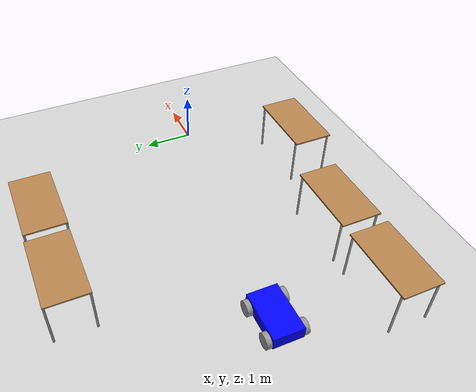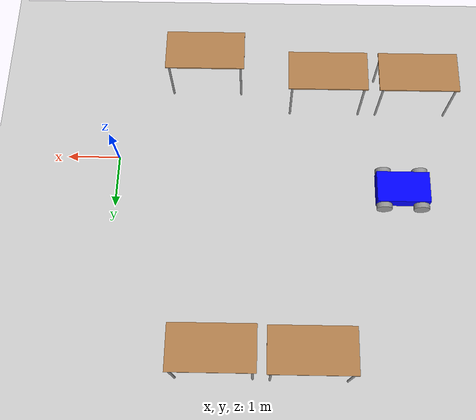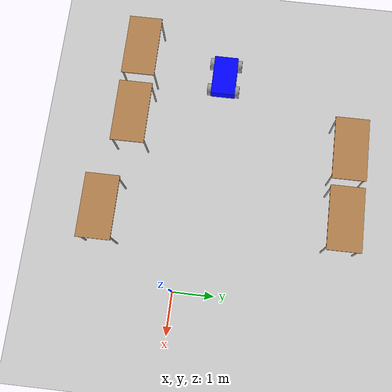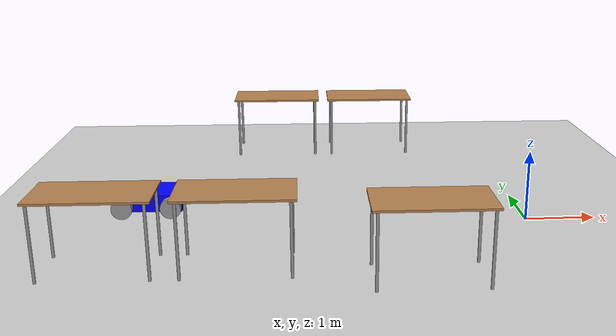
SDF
<sdf version="1.6">
 <world name="default">
  <model name="ground_plane">
   <static>1</static>
   <link name="link">
    <collision name="collision">
     <geometry><plane><normal>0 0 1</normal><size>100 100</size></plane></geometry>
     <surface>
      <contact><collide_bitmask>65535</collide_bitmask></contact>
      <friction><ode><mu>100</mu><mu2>50</mu2></ode></friction>
     </surface>
    </collision>
    <visual name="visual">
     <cast_shadows>0</cast_shadows>
     <geometry><plane><normal>0 0 1</normal><size>100 100</size></plane></geometry>
     <material>
      <script><uri>file://media/materials/scripts/gazebo.material</uri><name>Gazebo/Grey</name></script>
     </material>
    </visual>
   </link>
  </model>
  <model name="table">
   <static>1</static>
   <link name="link">
    <collision name="surface">
     <pose>0 0 1 0 -0 0</pose>
     <geometry><box><size>1.5 0.8 0.03</size></box></geometry>
     <surface><friction><ode><mu>0.6</mu><mu2>0.6</mu2></ode></friction></surface>
    </collision>
    <visual name="visual1">
     <pose>0 0 1 0 -0 0</pose>
     <geometry><box><size>1.5 0.8 0.03</size></box></geometry>
     <material>
      <script><uri>file://media/materials/scripts/gazebo.material</uri><name>Gazebo/Wood</name></script>
     </material>
    </visual>
    <collision name="front_left_leg">
     <pose>0.68 0.38 0.5 0 -0 0</pose>
     <geometry><cylinder><radius>0.02</radius><length>1</length></cylinder></geometry>
    </collision>
    <visual name="front_left_leg">
     <pose>0.68 0.38 0.5 0 -0 0</pose>
     <geometry><cylinder><radius>0.02</radius><length>1</length></cylinder></geometry>
     <material>
      <script><uri>file://media/materials/scripts/gazebo.material</uri><name>Gazebo/Grey</name></script>
     </material>
    </visual>
    <collision name="front_right_leg">
     <pose>0.68 -0.38 0.5 0 -0 0</pose>
     <geometry><cylinder><radius>0.02</radius><length>1</length></cylinder></geometry>
    </collision>
    <visual name="front_right_leg">
     <pose>0.68 -0.38 0.5 0 -0 0</pose>
     <geometry><cylinder><radius>0.02</radius><length>1</length></cylinder></geometry>
     <material>
      <script><uri>file://media/materials/scripts/gazebo.material</uri><name>Gazebo/Grey</name></script>
     </material>
    </visual>
    <collision name="back_right_leg">
     <pose>-0.68 -0.38 0.5 0 -0 0</pose>
     <geometry><cylinder><radius>0.02</radius><length>1</length></cylinder></geometry>
    </collision>
    <visual name="back_right_leg">
     <pose>-0.68 -0.38 0.5 0 -0 0</pose>
     <geometry><cylinder><radius>0.02</radius><length>1</length></cylinder></geometry>
     <material>
      <script><uri>file://media/materials/scripts/gazebo.material</uri><name>Gazebo/Grey</name></script>
     </material>
    </visual>
    <collision name="back_left_leg">
     <pose>-0.68 0.38 0.5 0 -0 0</pose>
     <geometry><cylinder><radius>0.02</radius><length>1</length></cylinder></geometry>
    </collision>
    <visual name="back_left_leg">
     <pose>-0.68 0.38 0.5 0 -0 0</pose>
     <geometry><cylinder><radius>0.02</radius><length>1</length></cylinder></geometry>
     <material>
      <script><uri>file://media/materials/scripts/gazebo.material</uri><name>Gazebo/Grey</name></script>
     </material>
    </visual>
   </link>
   <pose>-1.99795 3.78498 0 0 -0 0</pose>
  </model>
  <model name="table_0">
   <static>1</static>
   <link name="link">
    <collision name="surface">
     <pose>0 0 1 0 -0 0</pose>
     <geometry><box><size>1.5 0.8 0.03</size></box></geometry>
     <surface><friction><ode><mu>0.6</mu><mu2>0.6</mu2></ode></friction></surface>
    </collision>
    <visual name="visual1">
     <pose>0 0 1 0 -0 0</pose>
     <geometry><box><size>1.5 0.8 0.03</size></box></geometry>
     <material>
      <script><uri>file://media/materials/scripts/gazebo.material</uri><name>Gazebo/Wood</name></script>
     </material>
    </visual>
    <collision name="front_left_leg">
     <pose>0.68 0.38 0.5 0 -0 0</pose>
     <geometry><cylinder><radius>0.02</radius><length>1</length></cylinder></geometry>
    </collision>
    <visual name="front_left_leg">
     <pose>0.68 0.38 0.5 0 -0 0</pose>
     <geometry><cylinder><radius>0.02</radius><length>1</length></cylinder></geometry>
     <material>
      <script><uri>file://media/materials/scripts/gazebo.material</uri><name>Gazebo/Grey</name></script>
     </material>
    </visual>
    <collision name="front_right_leg">
     <pose>0.68 -0.38 0.5 0 -0 0</pose>
     <geometry><cylinder><radius>0.02</radius><length>1</length></cylinder></geometry>
    </collision>
    <visual name="front_right_leg">
     <pose>0.68 -0.38 0.5 0 -0 0</pose>
     <geometry><cylinder><radius>0.02</radius><length>1</length></cylinder></geometry>
     <material>
      <script><uri>file://media/materials/scripts/gazebo.material</uri><name>Gazebo/Grey</name></script>
     </material>
    </visual>
    <collision name="back_right_leg">
     <pose>-0.68 -0.38 0.5 0 -0 0</pose>
     <geometry><cylinder><radius>0.02</radius><length>1</length></cylinder></geometry>
    </collision>
    <visual name="back_right_leg">
     <pose>-0.68 -0.38 0.5 0 -0 0</pose>
     <geometry><cylinder><radius>0.02</radius><length>1</length></cylinder></geometry>
     <material>
      <script><uri>file://media/materials/scripts/gazebo.material</uri><name>Gazebo/Grey</name></script>
     </material>
    </visual>
    <collision name="back_left_leg">
     <pose>-0.68 0.38 0.5 0 -0 0</pose>
     <geometry><cylinder><radius>0.02</radius><length>1</length></cylinder></geometry>
    </collision>
    <visual name="back_left_leg">
     <pose>-0.68 0.38 0.5 0 -0 0</pose>
     <geometry><cylinder><radius>0.02</radius><length>1</length></cylinder></geometry>
     <material>
      <script><uri>file://media/materials/scripts/gazebo.material</uri><name>Gazebo/Grey</name></script>
     </material>
    </visual>
   </link>
   <pose>-3.6562 3.79992 0 0 -0 0</pose>
  </model>
  <model name="table_1">
   <static>1</static>
   <link name="link">
    <collision name="surface">
     <pose>0 0 1 0 -0 0</pose>
     <geometry><box><size>1.5 0.8 0.03</size></box></geometry>
     <surface><friction><ode><mu>0.6</mu><mu2>0.6</mu2></ode></friction></surface>
    </collision>
    <visual name="visual1">
     <pose>0 0 1 0 -0 0</pose>
     <geometry><box><size>1.5 0.8 0.03</size></box></geometry>
     <material>
      <script><uri>file://media/materials/scripts/gazebo.material</uri><name>Gazebo/Wood</name></script>
     </material>
    </visual>
    <collision name="front_left_leg">
     <pose>0.68 0.38 0.5 0 -0 0</pose>
     <geometry><cylinder><radius>0.02</radius><length>1</length></cylinder></geometry>
    </collision>
    <visual name="front_left_leg">
     <pose>0.68 0.38 0.5 0 -0 0</pose>
     <geometry><cylinder><radius>0.02</radius><length>1</length></cylinder></geometry>
     <material>
      <script><uri>file://media/materials/scripts/gazebo.material</uri><name>Gazebo/Grey</name></script>
     </material>
    </visual>
    <collision name="front_right_leg">
     <pose>0.68 -0.38 0.5 0 -0 0</pose>
     <geometry><cylinder><radius>0.02</radius><length>1</length></cylinder></geometry>
    </collision>
    <visual name="front_right_leg">
     <pose>0.68 -0.38 0.5 0 -0 0</pose>
     <geometry><cylinder><radius>0.02</radius><length>1</length></cylinder></geometry>
     <material>
      <script><uri>file://media/materials/scripts/gazebo.material</uri><name>Gazebo/Grey</name></script>
     </material>
    </visual>
    <collision name="back_right_leg">
     <pose>-0.68 -0.38 0.5 0 -0 0</pose>
     <geometry><cylinder><radius>0.02</radius><length>1</length></cylinder></geometry>
    </collision>
    <visual name="back_right_leg">
     <pose>-0.68 -0.38 0.5 0 -0 0</pose>
     <geometry><cylinder><radius>0.02</radius><length>1</length></cylinder></geometry>
     <material>
      <script><uri>file://media/materials/scripts/gazebo.material</uri><name>Gazebo/Grey</name></script>
     </material>
    </visual>
    <collision name="back_left_leg">
     <pose>-0.68 0.38 0.5 0 -0 0</pose>
     <geometry><cylinder><radius>0.02</radius><length>1</length></cylinder></geometry>
    </collision>
    <visual name="back_left_leg">
     <pose>-0.68 0.38 0.5 0 -0 0</pose>
     <geometry><cylinder><radius>0.02</radius><length>1</length></cylinder></geometry>
     <material>
      <script><uri>file://media/materials/scripts/gazebo.material</uri><name>Gazebo/Grey</name></script>
     </material>
    </visual>
   </link>
   <pose>-4.01484 -1.41358 0 0 -0 0</pose>
  </model>
  <model name="table_2">
   <static>1</static>
   <link name="link">
    <collision name="surface">
     <pose>0 0 1 0 -0 0</pose>
     <geometry><box><size>1.5 0.8 0.03</size></box></geometry>
     <surface><friction><ode><mu>0.6</mu><mu2>0.6</mu2></ode></friction></surface>
    </collision>
    <visual name="visual1">
     <pose>0 0 1 0 -0 0</pose>
     <geometry><box><size>1.5 0.8 0.03</size></box></geometry>
     <material>
      <script><uri>file://media/materials/scripts/gazebo.material</uri><name>Gazebo/Wood</name></script>
     </material>
    </visual>
    <collision name="front_left_leg">
     <pose>0.68 0.38 0.5 0 -0 0</pose>
     <geometry><cylinder><radius>0.02</radius><length>1</length></cylinder></geometry>
    </collision>
    <visual name="front_left_leg">
     <pose>0.68 0.38 0.5 0 -0 0</pose>
     <geometry><cylinder><radius>0.02</radius><length>1</length></cylinder></geometry>
     <material>
      <script><uri>file://media/materials/scripts/gazebo.material</uri><name>Gazebo/Grey</name></script>
     </material>
    </visual>
    <collision name="front_right_leg">
     <pose>0.68 -0.38 0.5 0 -0 0</pose>
     <geometry><cylinder><radius>0.02</radius><length>1</length></cylinder></geometry>
    </collision>
    <visual name="front_right_leg">
     <pose>0.68 -0.38 0.5 0 -0 0</pose>
     <geometry><cylinder><radius>0.02</radius><length>1</length></cylinder></geometry>
     <material>
      <script><uri>file://media/materials/scripts/gazebo.material</uri><name>Gazebo/Grey</name></script>
     </material>
    </visual>
    <collision name="back_right_leg">
     <pose>-0.68 -0.38 0.5 0 -0 0</pose>
     <geometry><cylinder><radius>0.02</radius><length>1</length></cylinder></geometry>
    </collision>
    <visual name="back_right_leg">
     <pose>-0.68 -0.38 0.5 0 -0 0</pose>
     <geometry><cylinder><radius>0.02</radius><length>1</length></cylinder></geometry>
     <material>
      <script><uri>file://media/materials/scripts/gazebo.material</uri><name>Gazebo/Grey</name></script>
     </material>
    </visual>
    <collision name="back_left_leg">
     <pose>-0.68 0.38 0.5 0 -0 0</pose>
     <geometry><cylinder><radius>0.02</radius><length>1</length></cylinder></geometry>
    </collision>
    <visual name="back_left_leg">
     <pose>-0.68 0.38 0.5 0 -0 0</pose>
     <geometry><cylinder><radius>0.02</radius><length>1</length></cylinder></geometry>
     <material>
      <script><uri>file://media/materials/scripts/gazebo.material</uri><name>Gazebo/Grey</name></script>
     </material>
    </visual>
   </link>
   <pose>-5.72274 -1.40978 0 0 -0 0</pose>
  </model>
  <model name="table_3">
   <static>1</static>
   <link name="link">
    <collision name="surface">
     <pose>0 0 1 0 -0 0</pose>
     <geometry><box><size>1.5 0.8 0.03</size></box></geometry>
     <surface><friction><ode><mu>0.6</mu><mu2>0.6</mu2></ode></friction></surface>
    </collision>
    <visual name="visual1">
     <pose>0 0 1 0 -0 0</pose>
     <geometry><box><size>1.5 0.8 0.03</size></box></geometry>
     <material>
      <script><uri>file://media/materials/scripts/gazebo.material</uri><name>Gazebo/Wood</name></script>
     </material>
    </visual>
    <collision name="front_left_leg">
     <pose>0.68 0.38 0.5 0 -0 0</pose>
     <geometry><cylinder><radius>0.02</radius><length>1</length></cylinder></geometry>
    </collision>
    <visual name="front_left_leg">
     <pose>0.68 0.38 0.5 0 -0 0</pose>
     <geometry><cylinder><radius>0.02</radius><length>1</length></cylinder></geometry>
     <material>
      <script><uri>file://media/materials/scripts/gazebo.material</uri><name>Gazebo/Grey</name></script>
     </material>
    </visual>
    <collision name="front_right_leg">
     <pose>0.68 -0.38 0.5 0 -0 0</pose>
     <geometry><cylinder><radius>0.02</radius><length>1</length></cylinder></geometry>
    </collision>
    <visual name="front_right_leg">
     <pose>0.68 -0.38 0.5 0 -0 0</pose>
     <geometry><cylinder><radius>0.02</radius><length>1</length></cylinder></geometry>
     <material>
      <script><uri>file://media/materials/scripts/gazebo.material</uri><name>Gazebo/Grey</name></script>
     </material>
    </visual>
    <collision name="back_right_leg">
     <pose>-0.68 -0.38 0.5 0 -0 0</pose>
     <geometry><cylinder><radius>0.02</radius><length>1</length></cylinder></geometry>
    </collision>
    <visual name="back_right_leg">
     <pose>-0.68 -0.38 0.5 0 -0 0</pose>
     <geometry><cylinder><radius>0.02</radius><length>1</length></cylinder></geometry>
     <material>
      <script><uri>file://media/materials/scripts/gazebo.material</uri><name>Gazebo/Grey</name></script>
     </material>
    </visual>
    <collision name="back_left_leg">
     <pose>-0.68 0.38 0.5 0 -0 0</pose>
     <geometry><cylinder><radius>0.02</radius><length>1</length></cylinder></geometry>
    </collision>
    <visual name="back_left_leg">
     <pose>-0.68 0.38 0.5 0 -0 0</pose>
     <geometry><cylinder><radius>0.02</radius><length>1</length></cylinder></geometry>
     <material>
      <script><uri>file://media/materials/scripts/gazebo.material</uri><name>Gazebo/Grey</name></script>
     </material>
    </visual>
   </link>
   <pose>-1.67125 -1.83137 0 0 -0 0</pose>
  </model>
  <model name="MyRobot">
   <link name="link_0">
    <pose>0 0 0.040497 0 -0 0</pose>
    <inertial>
     <mass>1</mass>
     <inertia>
      <ixx>0.166667</ixx>
      <ixy>0</ixy>
      <ixz>0</ixz>
      <iyy>0.166667</iyy>
      <iyz>0</iyz>
      <izz>0.166667</izz>
     </inertia>
    </inertial>
    <visual name="visual">
     <geometry><box><size>1 0.6 0.25</size></box></geometry>
     <material>
      <lighting>1</lighting>
      <script><uri>file://media/materials/scripts/gazebo.material</uri><name>Gazebo/Grey</name></script>
      <shader type="pixel"><normal_map>__default__</normal_map></shader>
      <ambient>0 0 1 1</ambient>
      <diffuse>0 0 1 1</diffuse>
      <specular>0 0 1 1</specular>
      <emissive>0 0 0 1</emissive>
     </material>
    </visual>
    <collision name="collision">
     <geometry><box><size>1 0.6 0.25</size></box></geometry>
     <surface>
      <friction>
       <ode><mu>1</mu><mu2>1</mu2><fdir1>0 0 0</fdir1><slip1>0</slip1><slip2>0</slip2></ode>
       <torsional>
        <coefficient>1</coefficient>
        <patch_radius>0</patch_radius>
        <surface_radius>0</surface_radius>
        <use_patch_radius>1</use_patch_radius>
        <ode><slip>0</slip></ode>
       </torsional>
      </friction>
      <bounce><restitution_coefficient>0</restitution_coefficient><threshold>1e+06</threshold></bounce>
      <contact>
       <collide_without_contact>0</collide_without_contact>
       <collide_without_contact_bitmask>1</collide_without_contact_bitmask>
       <collide_bitmask>1</collide_bitmask>
       <ode>
        <soft_cfm>0</soft_cfm>
        <soft_erp>0.2</soft_erp>
        <kp>1e+13</kp>
        <kd>1</kd>
        <max_vel>0.01</max_vel>
        <min_depth>0</min_depth>
       </ode>
       <bullet>
        <split_impulse>1</split_impulse>
        <split_impulse_penetration_threshold>-0.01</split_impulse_penetration_threshold>
        <soft_cfm>0</soft_cfm>
        <soft_erp>0.2</soft_erp>
        <kp>1e+13</kp>
        <kd>1</kd>
       </bullet>
      </contact>
     </surface>
    </collision>
   </link>
   <link name="link_1">
    <pose>-0.35 -0.350119 -0.009503 1.57 -0 0</pose>
    <inertial>
     <mass>1</mass>
     <inertia><ixx>0.145833</ixx><ixy>0</ixy><ixz>0</ixz><iyy>0.145833</iyy><iyz>0</iyz><izz>0.125</izz></inertia>
    </inertial>
    <visual name="visual">
     <geometry><cylinder><radius>0.15</radius><length>0.1</length></cylinder></geometry>
     <material>
      <lighting>1</lighting>
      <script><uri>file://media/materials/scripts/gazebo.material</uri><name>Gazebo/Grey</name></script>
      <shader type="pixel"><normal_map>__default__</normal_map></shader>
      <ambient>0 0 0 1</ambient>
      <diffuse>0 0 0 1</diffuse>
      <specular>0.01 0.01 0.01 1</specular>
      <emissive>0 0 0 1</emissive>
     </material>
    </visual>
    <collision name="collision">
     <geometry><cylinder><radius>0.15</radius><length>0.1</length></cylinder></geometry>
     <surface>
      <friction>
       <ode><mu>1</mu><mu2>1</mu2><fdir1>0 0 0</fdir1><slip1>0</slip1><slip2>0</slip2></ode>
       <torsional>
        <coefficient>1</coefficient>
        <patch_radius>0</patch_radius>
        <surface_radius>0</surface_radius>
        <use_patch_radius>1</use_patch_radius>
        <ode><slip>0</slip></ode>
       </torsional>
      </friction>
      <bounce><restitution_coefficient>0</restitution_coefficient><threshold>1e+06</threshold></bounce>
      <contact>
       <collide_without_contact>0</collide_without_contact>
       <collide_without_contact_bitmask>1</collide_without_contact_bitmask>
       <collide_bitmask>1</collide_bitmask>
       <ode>
        <soft_cfm>0</soft_cfm>
        <soft_erp>0.2</soft_erp>
        <kp>1e+13</kp>
        <kd>1</kd>
        <max_vel>0.01</max_vel>
        <min_depth>0</min_depth>
       </ode>
       <bullet>
        <split_impulse>1</split_impulse>
        <split_impulse_penetration_threshold>-0.01</split_impulse_penetration_threshold>
        <soft_cfm>0</soft_cfm>
        <soft_erp>0.2</soft_erp>
        <kp>1e+13</kp>
        <kd>1</kd>
       </bullet>
      </contact>
     </surface>
    </collision>
   </link>
   <link name="link_1_clone">
    <pose>0.35 -0.350119 -0.009503 1.57 -0 0</pose>
    <inertial>
     <mass>1</mass>
     <inertia><ixx>0.145833</ixx><ixy>0</ixy><ixz>0</ixz><iyy>0.145833</iyy><iyz>0</iyz><izz>0.125</izz></inertia>
    </inertial>
    <visual name="visual">
     <geometry><cylinder><radius>0.15</radius><length>0.1</length></cylinder></geometry>
     <material>
      <lighting>1</lighting>
      <script><uri>file://media/materials/scripts/gazebo.material</uri><name>Gazebo/Grey</name></script>
      <shader type="pixel"><normal_map>__default__</normal_map></shader>
      <ambient>0 0 0 1</ambient>
      <diffuse>0 0 0 1</diffuse>
      <specular>0.01 0.01 0.01 1</specular>
      <emissive>0 0 0 1</emissive>
     </material>
    </visual>
    <collision name="collision">
     <geometry><cylinder><radius>0.15</radius><length>0.1</length></cylinder></geometry>
     <surface>
      <friction>
       <ode><mu>1</mu><mu2>1</mu2><fdir1>0 0 0</fdir1><slip1>0</slip1><slip2>0</slip2></ode>
       <torsional>
        <coefficient>1</coefficient>
        <patch_radius>0</patch_radius>
        <surface_radius>0</surface_radius>
        <use_patch_radius>1</use_patch_radius>
        <ode><slip>0</slip></ode>
       </torsional>
      </friction>
      <bounce><restitution_coefficient>0</restitution_coefficient><threshold>1e+06</threshold></bounce>
      <contact>
       <collide_without_contact>0</collide_without_contact>
       <collide_without_contact_bitmask>1</collide_without_contact_bitmask>
       <collide_bitmask>1</collide_bitmask>
       <ode>
        <soft_cfm>0</soft_cfm>
        <soft_erp>0.2</soft_erp>
        <kp>1e+13</kp>
        <kd>1</kd>
        <max_vel>0.01</max_vel>
        <min_depth>0</min_depth>
       </ode>
       <bullet>
        <split_impulse>1</split_impulse>
        <split_impulse_penetration_threshold>-0.01</split_impulse_penetration_threshold>
        <soft_cfm>0</soft_cfm>
        <soft_erp>0.2</soft_erp>
        <kp>1e+13</kp>
        <kd>1</kd>
       </bullet>
      </contact>
     </surface>
    </collision>
   </link>
   <link name="link_1_clone_0">
    <pose>0.35 0.350119 -0.011986 1.57 -0 0</pose>
    <inertial>
     <mass>1</mass>
     <inertia><ixx>0.145833</ixx><ixy>0</ixy><ixz>0</ixz><iyy>0.145833</iyy><iyz>0</iyz><izz>0.125</izz></inertia>
    </inertial>
    <visual name="visual">
     <geometry><cylinder><radius>0.15</radius><length>0.1</length></cylinder></geometry>
     <material>
      <lighting>1</lighting>
      <script><uri>file://media/materials/scripts/gazebo.material</uri><name>Gazebo/Grey</name></script>
      <shader type="pixel"><normal_map>__default__</normal_map></shader>
      <ambient>0 0 0 1</ambient>
      <diffuse>0 0 0 1</diffuse>
      <specular>0.01 0.01 0.01 1</specular>
      <emissive>0 0 0 1</emissive>
     </material>
    </visual>
    <collision name="collision">
     <geometry><cylinder><radius>0.15</radius><length>0.1</length></cylinder></geometry>
     <surface>
      <friction>
       <ode><mu>1</mu><mu2>1</mu2><fdir1>0 0 0</fdir1><slip1>0</slip1><slip2>0</slip2></ode>
       <torsional>
        <coefficient>1</coefficient>
        <patch_radius>0</patch_radius>
        <surface_radius>0</surface_radius>
        <use_patch_radius>1</use_patch_radius>
        <ode><slip>0</slip></ode>
       </torsional>
      </friction>
      <bounce><restitution_coefficient>0</restitution_coefficient><threshold>1e+06</threshold></bounce>
      <contact>
       <collide_without_contact>0</collide_without_contact>
       <collide_without_contact_bitmask>1</collide_without_contact_bitmask>
       <collide_bitmask>1</collide_bitmask>
       <ode>
        <soft_cfm>0</soft_cfm>
        <soft_erp>0.2</soft_erp>
        <kp>1e+13</kp>
        <kd>1</kd>
        <max_vel>0.01</max_vel>
        <min_depth>0</min_depth>
       </ode>
       <bullet>
        <split_impulse>1</split_impulse>
        <split_impulse_penetration_threshold>-0.01</split_impulse_penetration_threshold>
        <soft_cfm>0</soft_cfm>
        <soft_erp>0.2</soft_erp>
        <kp>1e+13</kp>
        <kd>1</kd>
       </bullet>
      </contact>
     </surface>
    </collision>
   </link>
   <link name="link_1_clone_1">
    <pose>-0.35 0.350119 -0.009503 1.57 -0 0</pose>
    <inertial>
     <mass>1</mass>
     <inertia><ixx>0.145833</ixx><ixy>0</ixy><ixz>0</ixz><iyy>0.145833</iyy><iyz>0</iyz><izz>0.125</izz></inertia>
    </inertial>
    <visual name="visual">
     <geometry><cylinder><radius>0.15</radius><length>0.1</length></cylinder></geometry>
     <material>
      <lighting>1</lighting>
      <script><uri>file://media/materials/scripts/gazebo.material</uri><name>Gazebo/Grey</name></script>
      <shader type="pixel"><normal_map>__default__</normal_map></shader>
      <ambient>0 0 0 1</ambient>
      <diffuse>0 0 0 1</diffuse>
      <specular>0.01 0.01 0.01 1</specular>
      <emissive>0 0 0 1</emissive>
     </material>
    </visual>
    <collision name="collision">
     <geometry><cylinder><radius>0.15</radius><length>0.1</length></cylinder></geometry>
     <surface>
      <friction>
       <ode><mu>1</mu><mu2>1</mu2><fdir1>0 0 0</fdir1><slip1>0</slip1><slip2>0</slip2></ode>
       <torsional>
        <coefficient>1</coefficient>
        <patch_radius>0</patch_radius>
        <surface_radius>0</surface_radius>
        <use_patch_radius>1</use_patch_radius>
        <ode><slip>0</slip></ode>
       </torsional>
      </friction>
      <bounce><restitution_coefficient>0</restitution_coefficient><threshold>1e+06</threshold></bounce>
      <contact>
       <collide_without_contact>0</collide_without_contact>
       <collide_without_contact_bitmask>1</collide_without_contact_bitmask>
       <collide_bitmask>1</collide_bitmask>
       <ode>
        <soft_cfm>0</soft_cfm>
        <soft_erp>0.2</soft_erp>
        <kp>1e+13</kp>
        <kd>1</kd>
        <max_vel>0.01</max_vel>
        <min_depth>0</min_depth>
       </ode>
       <bullet>
        <split_impulse>1</split_impulse>
        <split_impulse_penetration_threshold>-0.01</split_impulse_penetration_threshold>
        <soft_cfm>0</soft_cfm>
        <soft_erp>0.2</soft_erp>
        <kp>1e+13</kp>
        <kd>1</kd>
       </bullet>
      </contact>
     </surface>
    </collision>
   </link>
   <joint name="link_0_JOINT_0" type="revolute">
    <parent>link_0</parent>
    <child>link_1_clone</child>
    <axis>
     <xyz>0 0 1</xyz>
     <use_parent_model_frame>0</use_parent_model_frame>
     <limit>
      <lower>-1.79769e+308</lower>
      <upper>1.79769e+308</upper>
      <effort>-1</effort>
      <velocity>-1</velocity>
     </limit>
     <dynamics>
      <spring_reference>0</spring_reference>
      <spring_stiffness>0</spring_stiffness>
      <damping>0</damping>
     </dynamics>
    </axis>
    <physics>
     <ode><limit><cfm>0</cfm><erp>0.2</erp></limit><suspension><cfm>0</cfm><erp>0.2</erp></suspension></ode>
    </physics>
   </joint>
   <joint name="link_0_JOINT_1" type="revolute">
    <parent>link_0</parent>
    <child>link_1_clone_0</child>
    <axis>
     <xyz>0 0 1</xyz>
     <use_parent_model_frame>0</use_parent_model_frame>
     <limit>
      <lower>-1.79769e+308</lower>
      <upper>1.79769e+308</upper>
      <effort>-1</effort>
      <velocity>-1</velocity>
     </limit>
     <dynamics>
      <spring_reference>0</spring_reference>
      <spring_stiffness>0</spring_stiffness>
      <damping>0</damping>
     </dynamics>
    </axis>
    <physics>
     <ode><limit><cfm>0</cfm><erp>0.2</erp></limit><suspension><cfm>0</cfm><erp>0.2</erp></suspension></ode>
    </physics>
   </joint>
   <joint name="link_0_JOINT_2" type="revolute">
    <parent>link_0</parent>
    <child>link_1_clone_1</child>
    <axis>
     <xyz>0 0 1</xyz>
     <use_parent_model_frame>0</use_parent_model_frame>
     <limit>
      <lower>-1.79769e+308</lower>
      <upper>1.79769e+308</upper>
      <effort>-1</effort>
      <velocity>-1</velocity>
     </limit>
     <dynamics>
      <spring_reference>0</spring_reference>
      <spring_stiffness>0</spring_stiffness>
      <damping>0</damping>
     </dynamics>
    </axis>
    <physics>
     <ode><limit><cfm>0</cfm><erp>0.2</erp></limit><suspension><cfm>0</cfm><erp>0.2</erp></suspension></ode>
    </physics>
   </joint>
   <joint name="link_0_JOINT_3" type="revolute">
    <parent>link_0</parent>
    <child>link_1</child>
    <axis>
     <xyz>0 0 1</xyz>
     <use_parent_model_frame>0</use_parent_model_frame>
     <limit>
      <lower>-1.79769e+308</lower>
      <upper>1.79769e+308</upper>
      <effort>-1</effort>
      <velocity>-1</velocity>
     </limit>
     <dynamics>
      <spring_reference>0</spring_reference>
      <spring_stiffness>0</spring_stiffness>
      <damping>0</damping>
     </dynamics>
    </axis>
    <physics>
     <ode><limit><cfm>0</cfm><erp>0.2</erp></limit><suspension><cfm>0</cfm><erp>0.2</erp></suspension></ode>
    </physics>
   </joint>
   <static>0</static>
   <pose>-5.45841 0.647354 0.160745 0.000799 -0.002747 -0.003212</pose>
  </model>
 </world>
</sdf>
